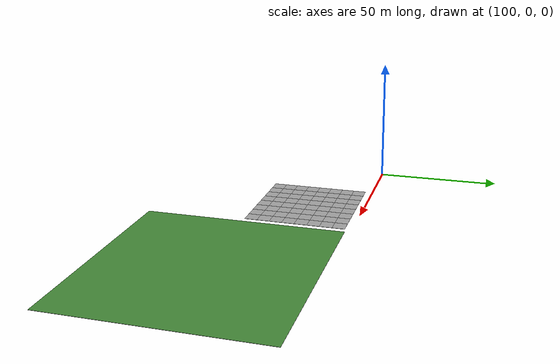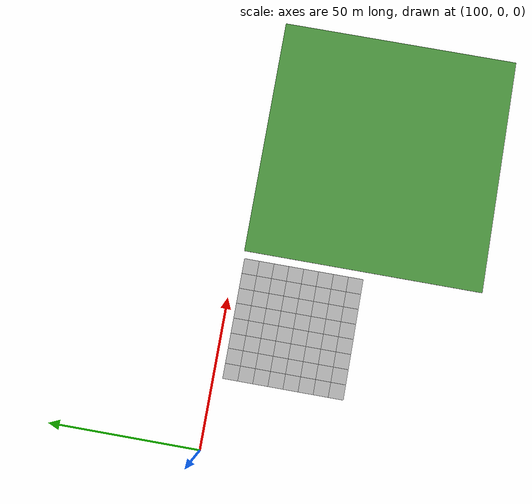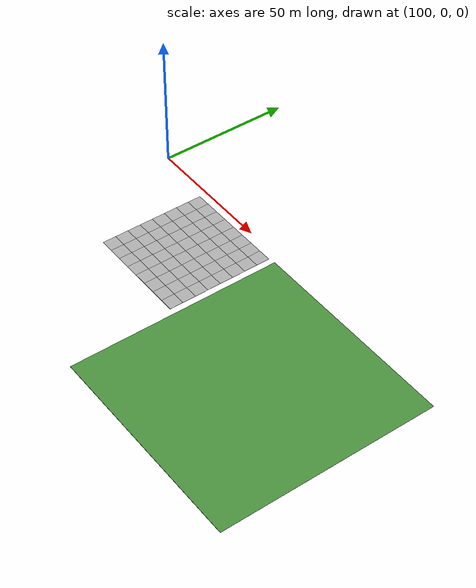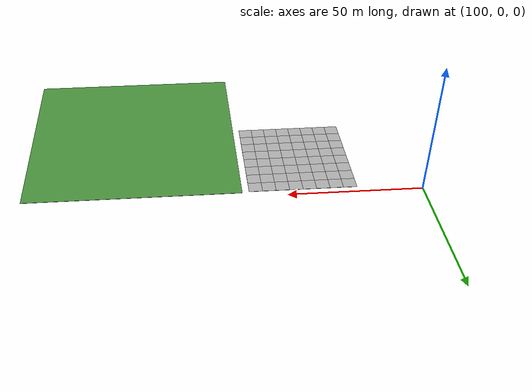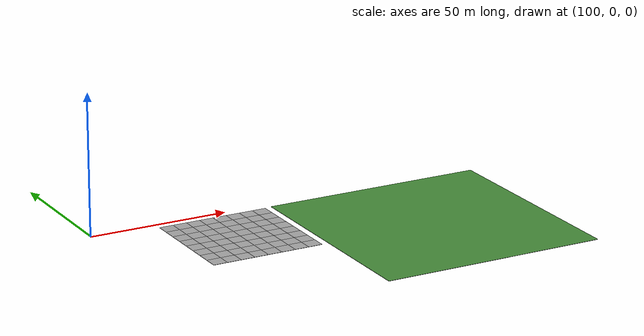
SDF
<sdf version="1.7">
 <world name="default">
  <model name="mud_plane_80x80_5">
   <model name="mud_plane_40x40">
    <model name="mud_plane_20x20">
     <model name="mud_plane">
      <static>1</static>
      <link name="link">
       <collision name="collision"><geometry><box><size>10 10 0.1</size></box></geometry></collision>
       <visual name="visual_1">
        <pose>-2.5 2.5 -0.05 0 -0 0</pose>
        <cast_shadows>0</cast_shadows>
        <geometry><box><size>5 5 0.1</size></box></geometry>
        <material>
         <script>
          <uri>model://mud_plane/materials/scripts</uri>
          <uri>model://mud_plane/materials/textures</uri>
          <name>vrc/mud</name>
         </script>
        </material>
       </visual>
       <visual name="visual_2">
        <pose>2.5 2.5 -0.05 0 -0 0</pose>
        <cast_shadows>0</cast_shadows>
        <geometry><box><size>5 5 0.1</size></box></geometry>
        <material>
         <script>
          <uri>model://mud_plane/materials/scripts</uri>
          <uri>model://mud_plane/materials/textures</uri>
          <name>vrc/mud</name>
         </script>
        </material>
       </visual>
       <visual name="visual_3">
        <pose>2.5 -2.5 -0.05 0 -0 0</pose>
        <cast_shadows>0</cast_shadows>
        <geometry><box><size>5 5 0.1</size></box></geometry>
        <material>
         <script>
          <uri>model://mud_plane/materials/scripts</uri>
          <uri>model://mud_plane/materials/textures</uri>
          <name>vrc/mud</name>
         </script>
        </material>
       </visual>
       <visual name="visual_4">
        <pose>-2.5 -2.5 -0.05 0 -0 0</pose>
        <cast_shadows>0</cast_shadows>
        <geometry><box><size>5 5 0.1</size></box></geometry>
        <material>
         <script>
          <uri>model://mud_plane/materials/scripts</uri>
          <uri>model://mud_plane/materials/textures</uri>
          <name>vrc/mud</name>
         </script>
        </material>
       </visual>
      </link>
      <pose>-4.99986 -4.99991 0 0 -0 0</pose>
     </model>
     <model name="mud_plane_0">
      <static>1</static>
      <link name="link">
       <collision name="collision"><geometry><box><size>10 10 0.1</size></box></geometry></collision>
       <visual name="visual_1">
        <pose>-2.5 2.5 -0.05 0 -0 0</pose>
        <cast_shadows>0</cast_shadows>
        <geometry><box><size>5 5 0.1</size></box></geometry>
        <material>
         <script>
          <uri>model://mud_plane/materials/scripts</uri>
          <uri>model://mud_plane/materials/textures</uri>
          <name>vrc/mud</name>
         </script>
        </material>
       </visual>
       <visual name="visual_2">
        <pose>2.5 2.5 -0.05 0 -0 0</pose>
        <cast_shadows>0</cast_shadows>
        <geometry><box><size>5 5 0.1</size></box></geometry>
        <material>
         <script>
          <uri>model://mud_plane/materials/scripts</uri>
          <uri>model://mud_plane/materials/textures</uri>
          <name>vrc/mud</name>
         </script>
        </material>
       </visual>
       <visual name="visual_3">
        <pose>2.5 -2.5 -0.05 0 -0 0</pose>
        <cast_shadows>0</cast_shadows>
        <geometry><box><size>5 5 0.1</size></box></geometry>
        <material>
         <script>
          <uri>model://mud_plane/materials/scripts</uri>
          <uri>model://mud_plane/materials/textures</uri>
          <name>vrc/mud</name>
         </script>
        </material>
       </visual>
       <visual name="visual_4">
        <pose>-2.5 -2.5 -0.05 0 -0 0</pose>
        <cast_shadows>0</cast_shadows>
        <geometry><box><size>5 5 0.1</size></box></geometry>
        <material>
         <script>
          <uri>model://mud_plane/materials/scripts</uri>
          <uri>model://mud_plane/materials/textures</uri>
          <name>vrc/mud</name>
         </script>
        </material>
       </visual>
      </link>
      <pose>-4.99946 4.99954 0 0 -0 0</pose>
     </model>
     <model name="mud_plane_1">
      <static>1</static>
      <link name="link">
       <collision name="collision"><geometry><box><size>10 10 0.1</size></box></geometry></collision>
       <visual name="visual_1">
        <pose>-2.5 2.5 -0.05 0 -0 0</pose>
        <cast_shadows>0</cast_shadows>
        <geometry><box><size>5 5 0.1</size></box></geometry>
        <material>
         <script>
          <uri>model://mud_plane/materials/scripts</uri>
          <uri>model://mud_plane/materials/textures</uri>
          <name>vrc/mud</name>
         </script>
        </material>
       </visual>
       <visual name="visual_2">
        <pose>2.5 2.5 -0.05 0 -0 0</pose>
        <cast_shadows>0</cast_shadows>
        <geometry><box><size>5 5 0.1</size></box></geometry>
        <material>
         <script>
          <uri>model://mud_plane/materials/scripts</uri>
          <uri>model://mud_plane/materials/textures</uri>
          <name>vrc/mud</name>
         </script>
        </material>
       </visual>
       <visual name="visual_3">
        <pose>2.5 -2.5 -0.05 0 -0 0</pose>
        <cast_shadows>0</cast_shadows>
        <geometry><box><size>5 5 0.1</size></box></geometry>
        <material>
         <script>
          <uri>model://mud_plane/materials/scripts</uri>
          <uri>model://mud_plane/materials/textures</uri>
          <name>vrc/mud</name>
         </script>
        </material>
       </visual>
       <visual name="visual_4">
        <pose>-2.5 -2.5 -0.05 0 -0 0</pose>
        <cast_shadows>0</cast_shadows>
        <geometry><box><size>5 5 0.1</size></box></geometry>
        <material>
         <script>
          <uri>model://mud_plane/materials/scripts</uri>
          <uri>model://mud_plane/materials/textures</uri>
          <name>vrc/mud</name>
         </script>
        </material>
       </visual>
      </link>
      <pose>4.99964 -4.99949 0 0 -0 0</pose>
     </model>
     <model name="mud_plane_2">
      <static>1</static>
      <link name="link">
       <collision name="collision"><geometry><box><size>10 10 0.1</size></box></geometry></collision>
       <visual name="visual_1">
        <pose>-2.5 2.5 -0.05 0 -0 0</pose>
        <cast_shadows>0</cast_shadows>
        <geometry><box><size>5 5 0.1</size></box></geometry>
        <material>
         <script>
          <uri>model://mud_plane/materials/scripts</uri>
          <uri>model://mud_plane/materials/textures</uri>
          <name>vrc/mud</name>
         </script>
        </material>
       </visual>
       <visual name="visual_2">
        <pose>2.5 2.5 -0.05 0 -0 0</pose>
        <cast_shadows>0</cast_shadows>
        <geometry><box><size>5 5 0.1</size></box></geometry>
        <material>
         <script>
          <uri>model://mud_plane/materials/scripts</uri>
          <uri>model://mud_plane/materials/textures</uri>
          <name>vrc/mud</name>
         </script>
        </material>
       </visual>
       <visual name="visual_3">
        <pose>2.5 -2.5 -0.05 0 -0 0</pose>
        <cast_shadows>0</cast_shadows>
        <geometry><box><size>5 5 0.1</size></box></geometry>
        <material>
         <script>
          <uri>model://mud_plane/materials/scripts</uri>
          <uri>model://mud_plane/materials/textures</uri>
          <name>vrc/mud</name>
         </script>
        </material>
       </visual>
       <visual name="visual_4">
        <pose>-2.5 -2.5 -0.05 0 -0 0</pose>
        <cast_shadows>0</cast_shadows>
        <geometry><box><size>5 5 0.1</size></box></geometry>
        <material>
         <script>
          <uri>model://mud_plane/materials/scripts</uri>
          <uri>model://mud_plane/materials/textures</uri>
          <name>vrc/mud</name>
         </script>
        </material>
       </visual>
      </link>
      <pose>4.99967 4.99986 0 0 -0 0</pose>
     </model>
     <static>0</static>
     <pose>-9.99895 9.99843 0 0 -0 0</pose>
    </model>
    <model name="mud_plane_20x20_0">
     <model name="mud_plane">
      <static>1</static>
      <link name="link">
       <collision name="collision"><geometry><box><size>10 10 0.1</size></box></geometry></collision>
       <visual name="visual_1">
        <pose>-2.5 2.5 -0.05 0 -0 0</pose>
        <cast_shadows>0</cast_shadows>
        <geometry><box><size>5 5 0.1</size></box></geometry>
        <material>
         <script>
          <uri>model://mud_plane/materials/scripts</uri>
          <uri>model://mud_plane/materials/textures</uri>
          <name>vrc/mud</name>
         </script>
        </material>
       </visual>
       <visual name="visual_2">
        <pose>2.5 2.5 -0.05 0 -0 0</pose>
        <cast_shadows>0</cast_shadows>
        <geometry><box><size>5 5 0.1</size></box></geometry>
        <material>
         <script>
          <uri>model://mud_plane/materials/scripts</uri>
          <uri>model://mud_plane/materials/textures</uri>
          <name>vrc/mud</name>
         </script>
        </material>
       </visual>
       <visual name="visual_3">
        <pose>2.5 -2.5 -0.05 0 -0 0</pose>
        <cast_shadows>0</cast_shadows>
        <geometry><box><size>5 5 0.1</size></box></geometry>
        <material>
         <script>
          <uri>model://mud_plane/materials/scripts</uri>
          <uri>model://mud_plane/materials/textures</uri>
          <name>vrc/mud</name>
         </script>
        </material>
       </visual>
       <visual name="visual_4">
        <pose>-2.5 -2.5 -0.05 0 -0 0</pose>
        <cast_shadows>0</cast_shadows>
        <geometry><box><size>5 5 0.1</size></box></geometry>
        <material>
         <script>
          <uri>model://mud_plane/materials/scripts</uri>
          <uri>model://mud_plane/materials/textures</uri>
          <name>vrc/mud</name>
         </script>
        </material>
       </visual>
      </link>
      <pose>-4.99986 -4.99991 0 0 -0 0</pose>
     </model>
     <model name="mud_plane_0">
      <static>1</static>
      <link name="link">
       <collision name="collision"><geometry><box><size>10 10 0.1</size></box></geometry></collision>
       <visual name="visual_1">
        <pose>-2.5 2.5 -0.05 0 -0 0</pose>
        <cast_shadows>0</cast_shadows>
        <geometry><box><size>5 5 0.1</size></box></geometry>
        <material>
         <script>
          <uri>model://mud_plane/materials/scripts</uri>
          <uri>model://mud_plane/materials/textures</uri>
          <name>vrc/mud</name>
         </script>
        </material>
       </visual>
       <visual name="visual_2">
        <pose>2.5 2.5 -0.05 0 -0 0</pose>
        <cast_shadows>0</cast_shadows>
        <geometry><box><size>5 5 0.1</size></box></geometry>
        <material>
         <script>
          <uri>model://mud_plane/materials/scripts</uri>
          <uri>model://mud_plane/materials/textures</uri>
          <name>vrc/mud</name>
         </script>
        </material>
       </visual>
       <visual name="visual_3">
        <pose>2.5 -2.5 -0.05 0 -0 0</pose>
        <cast_shadows>0</cast_shadows>
        <geometry><box><size>5 5 0.1</size></box></geometry>
        <material>
         <script>
          <uri>model://mud_plane/materials/scripts</uri>
          <uri>model://mud_plane/materials/textures</uri>
          <name>vrc/mud</name>
         </script>
        </material>
       </visual>
       <visual name="visual_4">
        <pose>-2.5 -2.5 -0.05 0 -0 0</pose>
        <cast_shadows>0</cast_shadows>
        <geometry><box><size>5 5 0.1</size></box></geometry>
        <material>
         <script>
          <uri>model://mud_plane/materials/scripts</uri>
          <uri>model://mud_plane/materials/textures</uri>
          <name>vrc/mud</name>
         </script>
        </material>
       </visual>
      </link>
      <pose>-4.99946 4.99954 0 0 -0 0</pose>
     </model>
     <model name="mud_plane_1">
      <static>1</static>
      <link name="link">
       <collision name="collision"><geometry><box><size>10 10 0.1</size></box></geometry></collision>
       <visual name="visual_1">
        <pose>-2.5 2.5 -0.05 0 -0 0</pose>
        <cast_shadows>0</cast_shadows>
        <geometry><box><size>5 5 0.1</size></box></geometry>
        <material>
         <script>
          <uri>model://mud_plane/materials/scripts</uri>
          <uri>model://mud_plane/materials/textures</uri>
          <name>vrc/mud</name>
         </script>
        </material>
       </visual>
       <visual name="visual_2">
        <pose>2.5 2.5 -0.05 0 -0 0</pose>
        <cast_shadows>0</cast_shadows>
        <geometry><box><size>5 5 0.1</size></box></geometry>
        <material>
         <script>
          <uri>model://mud_plane/materials/scripts</uri>
          <uri>model://mud_plane/materials/textures</uri>
          <name>vrc/mud</name>
         </script>
        </material>
       </visual>
       <visual name="visual_3">
        <pose>2.5 -2.5 -0.05 0 -0 0</pose>
        <cast_shadows>0</cast_shadows>
        <geometry><box><size>5 5 0.1</size></box></geometry>
        <material>
         <script>
          <uri>model://mud_plane/materials/scripts</uri>
          <uri>model://mud_plane/materials/textures</uri>
          <name>vrc/mud</name>
         </script>
        </material>
       </visual>
       <visual name="visual_4">
        <pose>-2.5 -2.5 -0.05 0 -0 0</pose>
        <cast_shadows>0</cast_shadows>
        <geometry><box><size>5 5 0.1</size></box></geometry>
        <material>
         <script>
          <uri>model://mud_plane/materials/scripts</uri>
          <uri>model://mud_plane/materials/textures</uri>
          <name>vrc/mud</name>
         </script>
        </material>
       </visual>
      </link>
      <pose>4.99964 -4.99949 0 0 -0 0</pose>
     </model>
     <model name="mud_plane_2">
      <static>1</static>
      <link name="link">
       <collision name="collision"><geometry><box><size>10 10 0.1</size></box></geometry></collision>
       <visual name="visual_1">
        <pose>-2.5 2.5 -0.05 0 -0 0</pose>
        <cast_shadows>0</cast_shadows>
        <geometry><box><size>5 5 0.1</size></box></geometry>
        <material>
         <script>
          <uri>model://mud_plane/materials/scripts</uri>
          <uri>model://mud_plane/materials/textures</uri>
          <name>vrc/mud</name>
         </script>
        </material>
       </visual>
       <visual name="visual_2">
        <pose>2.5 2.5 -0.05 0 -0 0</pose>
        <cast_shadows>0</cast_shadows>
        <geometry><box><size>5 5 0.1</size></box></geometry>
        <material>
         <script>
          <uri>model://mud_plane/materials/scripts</uri>
          <uri>model://mud_plane/materials/textures</uri>
          <name>vrc/mud</name>
         </script>
        </material>
       </visual>
       <visual name="visual_3">
        <pose>2.5 -2.5 -0.05 0 -0 0</pose>
        <cast_shadows>0</cast_shadows>
        <geometry><box><size>5 5 0.1</size></box></geometry>
        <material>
         <script>
          <uri>model://mud_plane/materials/scripts</uri>
          <uri>model://mud_plane/materials/textures</uri>
          <name>vrc/mud</name>
         </script>
        </material>
       </visual>
       <visual name="visual_4">
        <pose>-2.5 -2.5 -0.05 0 -0 0</pose>
        <cast_shadows>0</cast_shadows>
        <geometry><box><size>5 5 0.1</size></box></geometry>
        <material>
         <script>
          <uri>model://mud_plane/materials/scripts</uri>
          <uri>model://mud_plane/materials/textures</uri>
          <name>vrc/mud</name>
         </script>
        </material>
       </visual>
      </link>
      <pose>4.99967 4.99986 0 0 -0 0</pose>
     </model>
     <static>0</static>
     <pose>9.99933 9.9997 0 0 -0 0</pose>
    </model>
    <model name="mud_plane_20x20_1">
     <model name="mud_plane">
      <static>1</static>
      <link name="link">
       <collision name="collision"><geometry><box><size>10 10 0.1</size></box></geometry></collision>
       <visual name="visual_1">
        <pose>-2.5 2.5 -0.05 0 -0 0</pose>
        <cast_shadows>0</cast_shadows>
        <geometry><box><size>5 5 0.1</size></box></geometry>
        <material>
         <script>
          <uri>model://mud_plane/materials/scripts</uri>
          <uri>model://mud_plane/materials/textures</uri>
          <name>vrc/mud</name>
         </script>
        </material>
       </visual>
       <visual name="visual_2">
        <pose>2.5 2.5 -0.05 0 -0 0</pose>
        <cast_shadows>0</cast_shadows>
        <geometry><box><size>5 5 0.1</size></box></geometry>
        <material>
         <script>
          <uri>model://mud_plane/materials/scripts</uri>
          <uri>model://mud_plane/materials/textures</uri>
          <name>vrc/mud</name>
         </script>
        </material>
       </visual>
       <visual name="visual_3">
        <pose>2.5 -2.5 -0.05 0 -0 0</pose>
        <cast_shadows>0</cast_shadows>
        <geometry><box><size>5 5 0.1</size></box></geometry>
        <material>
         <script>
          <uri>model://mud_plane/materials/scripts</uri>
          <uri>model://mud_plane/materials/textures</uri>
          <name>vrc/mud</name>
         </script>
        </material>
       </visual>
       <visual name="visual_4">
        <pose>-2.5 -2.5 -0.05 0 -0 0</pose>
        <cast_shadows>0</cast_shadows>
        <geometry><box><size>5 5 0.1</size></box></geometry>
        <material>
         <script>
          <uri>model://mud_plane/materials/scripts</uri>
          <uri>model://mud_plane/materials/textures</uri>
          <name>vrc/mud</name>
         </script>
        </material>
       </visual>
      </link>
      <pose>-4.99986 -4.99991 0 0 -0 0</pose>
     </model>
     <model name="mud_plane_0">
      <static>1</static>
      <link name="link">
       <collision name="collision"><geometry><box><size>10 10 0.1</size></box></geometry></collision>
       <visual name="visual_1">
        <pose>-2.5 2.5 -0.05 0 -0 0</pose>
        <cast_shadows>0</cast_shadows>
        <geometry><box><size>5 5 0.1</size></box></geometry>
        <material>
         <script>
          <uri>model://mud_plane/materials/scripts</uri>
          <uri>model://mud_plane/materials/textures</uri>
          <name>vrc/mud</name>
         </script>
        </material>
       </visual>
       <visual name="visual_2">
        <pose>2.5 2.5 -0.05 0 -0 0</pose>
        <cast_shadows>0</cast_shadows>
        <geometry><box><size>5 5 0.1</size></box></geometry>
        <material>
         <script>
          <uri>model://mud_plane/materials/scripts</uri>
          <uri>model://mud_plane/materials/textures</uri>
          <name>vrc/mud</name>
         </script>
        </material>
       </visual>
       <visual name="visual_3">
        <pose>2.5 -2.5 -0.05 0 -0 0</pose>
        <cast_shadows>0</cast_shadows>
        <geometry><box><size>5 5 0.1</size></box></geometry>
        <material>
         <script>
          <uri>model://mud_plane/materials/scripts</uri>
          <uri>model://mud_plane/materials/textures</uri>
          <name>vrc/mud</name>
         </script>
        </material>
       </visual>
       <visual name="visual_4">
        <pose>-2.5 -2.5 -0.05 0 -0 0</pose>
        <cast_shadows>0</cast_shadows>
        <geometry><box><size>5 5 0.1</size></box></geometry>
        <material>
         <script>
          <uri>model://mud_plane/materials/scripts</uri>
          <uri>model://mud_plane/materials/textures</uri>
          <name>vrc/mud</name>
         </script>
        </material>
       </visual>
      </link>
      <pose>-4.99946 4.99954 0 0 -0 0</pose>
     </model>
     <model name="mud_plane_1">
      <static>1</static>
      <link name="link">
       <collision name="collision"><geometry><box><size>10 10 0.1</size></box></geometry></collision>
       <visual name="visual_1">
        <pose>-2.5 2.5 -0.05 0 -0 0</pose>
        <cast_shadows>0</cast_shadows>
        <geometry><box><size>5 5 0.1</size></box></geometry>
        <material>
         <script>
          <uri>model://mud_plane/materials/scripts</uri>
          <uri>model://mud_plane/materials/textures</uri>
          <name>vrc/mud</name>
         </script>
        </material>
       </visual>
       <visual name="visual_2">
        <pose>2.5 2.5 -0.05 0 -0 0</pose>
        <cast_shadows>0</cast_shadows>
        <geometry><box><size>5 5 0.1</size></box></geometry>
        <material>
         <script>
          <uri>model://mud_plane/materials/scripts</uri>
          <uri>model://mud_plane/materials/textures</uri>
          <name>vrc/mud</name>
         </script>
        </material>
       </visual>
       <visual name="visual_3">
        <pose>2.5 -2.5 -0.05 0 -0 0</pose>
        <cast_shadows>0</cast_shadows>
        <geometry><box><size>5 5 0.1</size></box></geometry>
        <material>
         <script>
          <uri>model://mud_plane/materials/scripts</uri>
          <uri>model://mud_plane/materials/textures</uri>
          <name>vrc/mud</name>
         </script>
        </material>
       </visual>
       <visual name="visual_4">
        <pose>-2.5 -2.5 -0.05 0 -0 0</pose>
        <cast_shadows>0</cast_shadows>
        <geometry><box><size>5 5 0.1</size></box></geometry>
        <material>
         <script>
          <uri>model://mud_plane/materials/scripts</uri>
          <uri>model://mud_plane/materials/textures</uri>
          <name>vrc/mud</name>
         </script>
        </material>
       </visual>
      </link>
      <pose>4.99964 -4.99949 0 0 -0 0</pose>
     </model>
     <model name="mud_plane_2">
      <static>1</static>
      <link name="link">
       <collision name="collision"><geometry><box><size>10 10 0.1</size></box></geometry></collision>
       <visual name="visual_1">
        <pose>-2.5 2.5 -0.05 0 -0 0</pose>
        <cast_shadows>0</cast_shadows>
        <geometry><box><size>5 5 0.1</size></box></geometry>
        <material>
         <script>
          <uri>model://mud_plane/materials/scripts</uri>
          <uri>model://mud_plane/materials/textures</uri>
          <name>vrc/mud</name>
         </script>
        </material>
       </visual>
       <visual name="visual_2">
        <pose>2.5 2.5 -0.05 0 -0 0</pose>
        <cast_shadows>0</cast_shadows>
        <geometry><box><size>5 5 0.1</size></box></geometry>
        <material>
         <script>
          <uri>model://mud_plane/materials/scripts</uri>
          <uri>model://mud_plane/materials/textures</uri>
          <name>vrc/mud</name>
         </script>
        </material>
       </visual>
       <visual name="visual_3">
        <pose>2.5 -2.5 -0.05 0 -0 0</pose>
        <cast_shadows>0</cast_shadows>
        <geometry><box><size>5 5 0.1</size></box></geometry>
        <material>
         <script>
          <uri>model://mud_plane/materials/scripts</uri>
          <uri>model://mud_plane/materials/textures</uri>
          <name>vrc/mud</name>
         </script>
        </material>
       </visual>
       <visual name="visual_4">
        <pose>-2.5 -2.5 -0.05 0 -0 0</pose>
        <cast_shadows>0</cast_shadows>
        <geometry><box><size>5 5 0.1</size></box></geometry>
        <material>
         <script>
          <uri>model://mud_plane/materials/scripts</uri>
          <uri>model://mud_plane/materials/textures</uri>
          <name>vrc/mud</name>
         </script>
        </material>
       </visual>
      </link>
      <pose>4.99967 4.99986 0 0 -0 0</pose>
     </model>
     <static>0</static>
     <pose>9.9993 -9.99877 0 0 -0 0</pose>
    </model>
    <model name="mud_plane_20x20_2">
     <model name="mud_plane">
      <static>1</static>
      <link name="link">
       <collision name="collision"><geometry><box><size>10 10 0.1</size></box></geometry></collision>
       <visual name="visual_1">
        <pose>-2.5 2.5 -0.05 0 -0 0</pose>
        <cast_shadows>0</cast_shadows>
        <geometry><box><size>5 5 0.1</size></box></geometry>
        <material>
         <script>
          <uri>model://mud_plane/materials/scripts</uri>
          <uri>model://mud_plane/materials/textures</uri>
          <name>vrc/mud</name>
         </script>
        </material>
       </visual>
       <visual name="visual_2">
        <pose>2.5 2.5 -0.05 0 -0 0</pose>
        <cast_shadows>0</cast_shadows>
        <geometry><box><size>5 5 0.1</size></box></geometry>
        <material>
         <script>
          <uri>model://mud_plane/materials/scripts</uri>
          <uri>model://mud_plane/materials/textures</uri>
          <name>vrc/mud</name>
         </script>
        </material>
       </visual>
       <visual name="visual_3">
        <pose>2.5 -2.5 -0.05 0 -0 0</pose>
        <cast_shadows>0</cast_shadows>
        <geometry><box><size>5 5 0.1</size></box></geometry>
        <material>
         <script>
          <uri>model://mud_plane/materials/scripts</uri>
          <uri>model://mud_plane/materials/textures</uri>
          <name>vrc/mud</name>
         </script>
        </material>
       </visual>
       <visual name="visual_4">
        <pose>-2.5 -2.5 -0.05 0 -0 0</pose>
        <cast_shadows>0</cast_shadows>
        <geometry><box><size>5 5 0.1</size></box></geometry>
        <material>
         <script>
          <uri>model://mud_plane/materials/scripts</uri>
          <uri>model://mud_plane/materials/textures</uri>
          <name>vrc/mud</name>
         </script>
        </material>
       </visual>
      </link>
      <pose>-4.99986 -4.99991 0 0 -0 0</pose>
     </model>
     <model name="mud_plane_0">
      <static>1</static>
      <link name="link">
       <collision name="collision"><geometry><box><size>10 10 0.1</size></box></geometry></collision>
       <visual name="visual_1">
        <pose>-2.5 2.5 -0.05 0 -0 0</pose>
        <cast_shadows>0</cast_shadows>
        <geometry><box><size>5 5 0.1</size></box></geometry>
        <material>
         <script>
          <uri>model://mud_plane/materials/scripts</uri>
          <uri>model://mud_plane/materials/textures</uri>
          <name>vrc/mud</name>
         </script>
        </material>
       </visual>
       <visual name="visual_2">
        <pose>2.5 2.5 -0.05 0 -0 0</pose>
        <cast_shadows>0</cast_shadows>
        <geometry><box><size>5 5 0.1</size></box></geometry>
        <material>
         <script>
          <uri>model://mud_plane/materials/scripts</uri>
          <uri>model://mud_plane/materials/textures</uri>
          <name>vrc/mud</name>
         </script>
        </material>
       </visual>
       <visual name="visual_3">
        <pose>2.5 -2.5 -0.05 0 -0 0</pose>
        <cast_shadows>0</cast_shadows>
        <geometry><box><size>5 5 0.1</size></box></geometry>
        <material>
         <script>
          <uri>model://mud_plane/materials/scripts</uri>
          <uri>model://mud_plane/materials/textures</uri>
          <name>vrc/mud</name>
         </script>
        </material>
       </visual>
       <visual name="visual_4">
        <pose>-2.5 -2.5 -0.05 0 -0 0</pose>
        <cast_shadows>0</cast_shadows>
        <geometry><box><size>5 5 0.1</size></box></geometry>
        <material>
         <script>
          <uri>model://mud_plane/materials/scripts</uri>
          <uri>model://mud_plane/materials/textures</uri>
          <name>vrc/mud</name>
         </script>
        </material>
       </visual>
      </link>
      <pose>-4.99946 4.99954 0 0 -0 0</pose>
     </model>
     <model name="mud_plane_1">
      <static>1</static>
      <link name="link">
       <collision name="collision"><geometry><box><size>10 10 0.1</size></box></geometry></collision>
       <visual name="visual_1">
        <pose>-2.5 2.5 -0.05 0 -0 0</pose>
        <cast_shadows>0</cast_shadows>
        <geometry><box><size>5 5 0.1</size></box></geometry>
        <material>
         <script>
          <uri>model://mud_plane/materials/scripts</uri>
          <uri>model://mud_plane/materials/textures</uri>
          <name>vrc/mud</name>
         </script>
        </material>
       </visual>
       <visual name="visual_2">
        <pose>2.5 2.5 -0.05 0 -0 0</pose>
        <cast_shadows>0</cast_shadows>
        <geometry><box><size>5 5 0.1</size></box></geometry>
        <material>
         <script>
          <uri>model://mud_plane/materials/scripts</uri>
          <uri>model://mud_plane/materials/textures</uri>
          <name>vrc/mud</name>
         </script>
        </material>
       </visual>
       <visual name="visual_3">
        <pose>2.5 -2.5 -0.05 0 -0 0</pose>
        <cast_shadows>0</cast_shadows>
        <geometry><box><size>5 5 0.1</size></box></geometry>
        <material>
         <script>
          <uri>model://mud_plane/materials/scripts</uri>
          <uri>model://mud_plane/materials/textures</uri>
          <name>vrc/mud</name>
         </script>
        </material>
       </visual>
       <visual name="visual_4">
        <pose>-2.5 -2.5 -0.05 0 -0 0</pose>
        <cast_shadows>0</cast_shadows>
        <geometry><box><size>5 5 0.1</size></box></geometry>
        <material>
         <script>
          <uri>model://mud_plane/materials/scripts</uri>
          <uri>model://mud_plane/materials/textures</uri>
          <name>vrc/mud</name>
         </script>
        </material>
       </visual>
      </link>
      <pose>4.99964 -4.99949 0 0 -0 0</pose>
     </model>
     <model name="mud_plane_2">
      <static>1</static>
      <link name="link">
       <collision name="collision"><geometry><box><size>10 10 0.1</size></box></geometry></collision>
       <visual name="visual_1">
        <pose>-2.5 2.5 -0.05 0 -0 0</pose>
        <cast_shadows>0</cast_shadows>
        <geometry><box><size>5 5 0.1</size></box></geometry>
        <material>
         <script>
          <uri>model://mud_plane/materials/scripts</uri>
          <uri>model://mud_plane/materials/textures</uri>
          <name>vrc/mud</name>
         </script>
        </material>
       </visual>
       <visual name="visual_2">
        <pose>2.5 2.5 -0.05 0 -0 0</pose>
        <cast_shadows>0</cast_shadows>
        <geometry><box><size>5 5 0.1</size></box></geometry>
        <material>
         <script>
          <uri>model://mud_plane/materials/scripts</uri>
          <uri>model://mud_plane/materials/textures</uri>
          <name>vrc/mud</name>
         </script>
        </material>
       </visual>
       <visual name="visual_3">
        <pose>2.5 -2.5 -0.05 0 -0 0</pose>
        <cast_shadows>0</cast_shadows>
        <geometry><box><size>5 5 0.1</size></box></geometry>
        <material>
         <script>
          <uri>model://mud_plane/materials/scripts</uri>
          <uri>model://mud_plane/materials/textures</uri>
          <name>vrc/mud</name>
         </script>
        </material>
       </visual>
       <visual name="visual_4">
        <pose>-2.5 -2.5 -0.05 0 -0 0</pose>
        <cast_shadows>0</cast_shadows>
        <geometry><box><size>5 5 0.1</size></box></geometry>
        <material>
         <script>
          <uri>model://mud_plane/materials/scripts</uri>
          <uri>model://mud_plane/materials/textures</uri>
          <name>vrc/mud</name>
         </script>
        </material>
       </visual>
      </link>
      <pose>4.99967 4.99986 0 0 -0 0</pose>
     </model>
     <static>0</static>
     <pose>-9.99969 -9.99935 0 0 -0 0</pose>
    </model>
    <static>0</static>
    <pose>19.9986 19.9995 0 0 -0 0</pose>
   </model>
   <static>0</static>
   <pose>123.857 -42.9997 0 0 -0 0</pose>
  </model>
  <model name="grass_plane_80x80_1">
   <pose>206.365 -42.4813 -0.05 0 -0 0</pose>
   <static>1</static>
   <link name="link">
    <collision name="collision"><geometry><box><size>80 80 0.1</size></box></geometry></collision>
    <visual name="grass">
     <cast_shadows>0</cast_shadows>
     <geometry><box><size>80 80 0.1</size></box></geometry>
     <material>
      <script><uri>file://media/materials/scripts/gazebo.material</uri><name>Gazebo/Grass</name></script>
     </material>
    </visual>
   </link>
  </model>
 </world>
</sdf>
